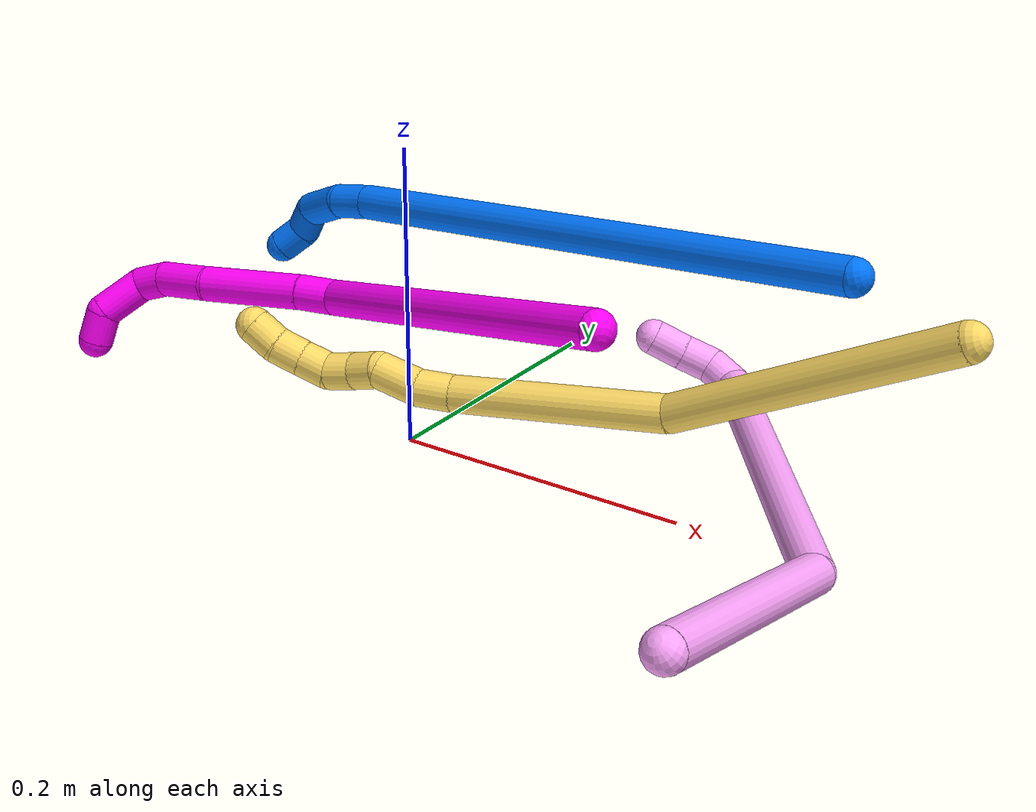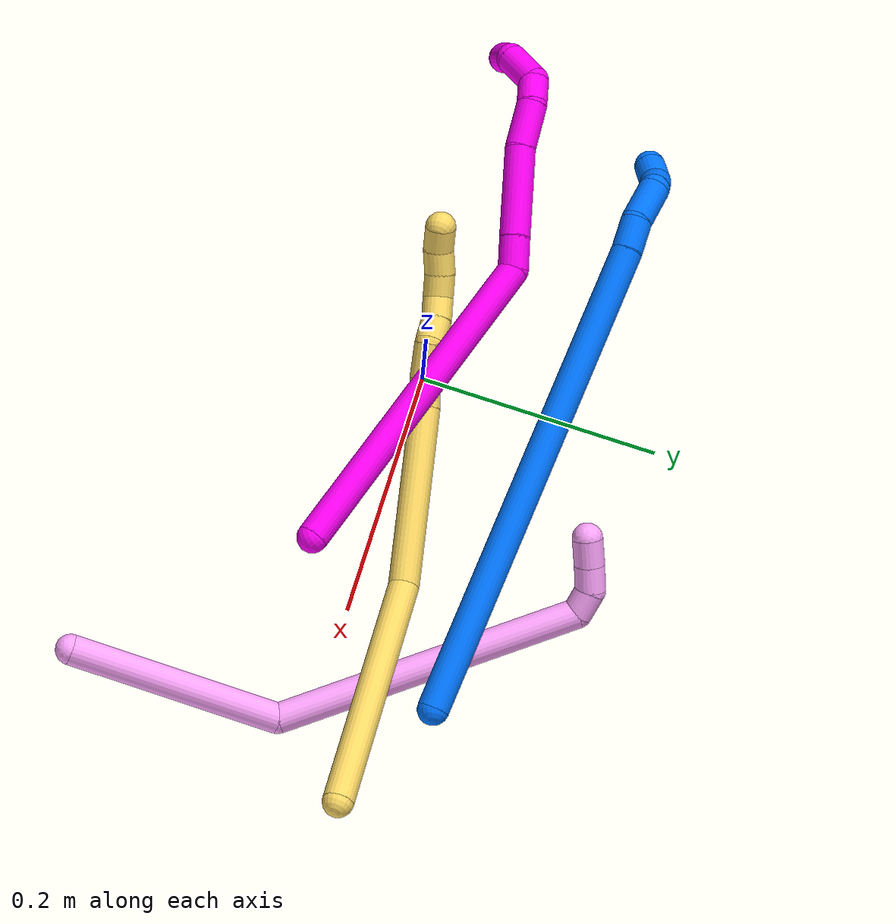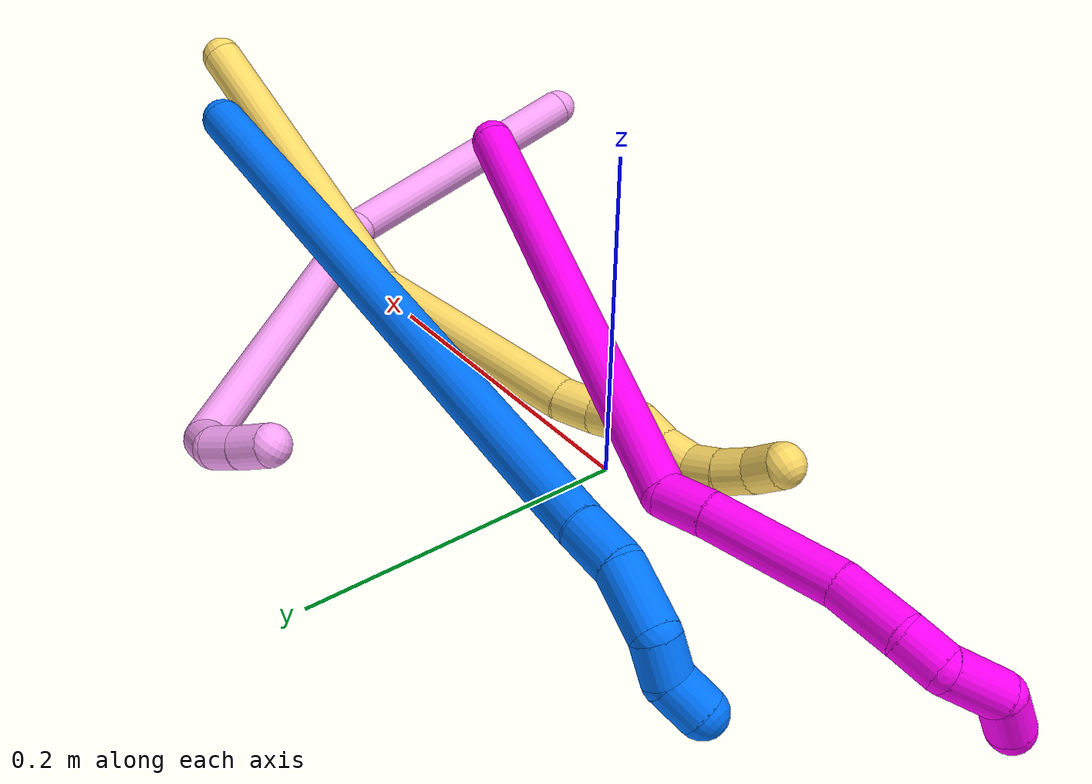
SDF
<sdf version="1.7">
 <world name="default">
  <model name="4">
   <static>0</static>
   <link name="4">
    <collision name="collision-cylinder-e_1_1_4">
     <pose>0.019542 0.049704 -0.070477 -2.52735 0.222836 -0.678271</pose>
     <geometry><cylinder><radius>0.0125</radius><length>0.176854</length></cylinder></geometry>
     <surface>
      <friction><ode><mu>1.16</mu><mu2>1.16</mu2><slip1>0</slip1><slip2>0</slip2></ode></friction>
      <contact><ode><kp>1e+06</kp><kd>1</kd><max_vel>0</max_vel><min_depth>0.001</min_depth></ode></contact>
     </surface>
    </collision>
    <visual name="visual-cylinder-e_1_1_4">
     <pose>0.019542 0.049704 -0.070477 -2.52735 0.222836 -0.678271</pose>
     <geometry><cylinder><radius>0.0125</radius><length>0.176854</length></cylinder></geometry>
     <material><ambient>1 0.65098 0.996078 1</ambient></material>
    </visual>
    <collision name="collision-cylinder-e_2_4_5">
     <pose>0.006421 0.210357 -0.195956 -2.03103 -0.257892 0.412079</pose>
     <geometry><cylinder><radius>0.0125</radius><length>0.25614</length></cylinder></geometry>
     <surface>
      <friction><ode><mu>1.16</mu><mu2>1.16</mu2><slip1>0</slip1><slip2>0</slip2></ode></friction>
      <contact><ode><kp>1e+06</kp><kd>1</kd><max_vel>0</max_vel><min_depth>0.001</min_depth></ode></contact>
     </surface>
    </collision>
    <visual name="visual-cylinder-e_2_4_5">
     <pose>0.006421 0.210357 -0.195956 -2.03103 -0.257892 0.412079</pose>
     <geometry><cylinder><radius>0.0125</radius><length>0.25614</length></cylinder></geometry>
     <material><ambient>1 0.65098 0.996078 1</ambient></material>
    </visual>
    <collision name="collision-cylinder-e_3_5_6">
     <pose>-0.032412 0.330119 -0.247975 -1.24436 -0.585551 0.425833</pose>
     <geometry><cylinder><radius>0.0125</radius><length>0.022326</length></cylinder></geometry>
     <surface>
      <friction><ode><mu>1.16</mu><mu2>1.16</mu2><slip1>0</slip1><slip2>0</slip2></ode></friction>
      <contact><ode><kp>1e+06</kp><kd>1</kd><max_vel>0</max_vel><min_depth>0.001</min_depth></ode></contact>
     </surface>
    </collision>
    <visual name="visual-cylinder-e_3_5_6">
     <pose>-0.032412 0.330119 -0.247975 -1.24436 -0.585551 0.425833</pose>
     <geometry><cylinder><radius>0.0125</radius><length>0.022326</length></cylinder></geometry>
     <material><ambient>1 0.65098 0.996078 1</ambient></material>
    </visual>
    <collision name="collision-cylinder-e_4_6_7">
     <pose>-0.046098 0.343169 -0.238368 -0.569169 -0.762792 0.233556</pose>
     <geometry><cylinder><radius>0.0125</radius><length>0.021756</length></cylinder></geometry>
     <surface>
      <friction><ode><mu>1.16</mu><mu2>1.16</mu2><slip1>0</slip1><slip2>0</slip2></ode></friction>
      <contact><ode><kp>1e+06</kp><kd>1</kd><max_vel>0</max_vel><min_depth>0.001</min_depth></ode></contact>
     </surface>
    </collision>
    <visual name="visual-cylinder-e_4_6_7">
     <pose>-0.046098 0.343169 -0.238368 -0.569169 -0.762792 0.233556</pose>
     <geometry><cylinder><radius>0.0125</radius><length>0.021756</length></cylinder></geometry>
     <material><ambient>1 0.65098 0.996078 1</ambient></material>
    </visual>
    <collision name="collision-cylinder-e_5_7_2">
     <pose>-0.061085 0.351782 -0.224233 -0.527489 -0.709997 0.199541</pose>
     <geometry><cylinder><radius>0.0125</radius><length>0.022924</length></cylinder></geometry>
     <surface>
      <friction><ode><mu>1.16</mu><mu2>1.16</mu2><slip1>0</slip1><slip2>0</slip2></ode></friction>
      <contact><ode><kp>1e+06</kp><kd>1</kd><max_vel>0</max_vel><min_depth>0.001</min_depth></ode></contact>
     </surface>
    </collision>
    <visual name="visual-cylinder-e_5_7_2">
     <pose>-0.061085 0.351782 -0.224233 -0.527489 -0.709997 0.199541</pose>
     <geometry><cylinder><radius>0.0125</radius><length>0.022924</length></cylinder></geometry>
     <material><ambient>1 0.65098 0.996078 1</ambient></material>
    </visual>
    <collision name="collision-sphere-2">
     <pose>-0.068556 0.356158 -0.216723 0 -0 0</pose>
     <geometry><sphere><radius>0.0125</radius></sphere></geometry>
     <surface>
      <friction><ode><mu>1.16</mu><mu2>1.16</mu2><slip1>0</slip1><slip2>0</slip2></ode></friction>
      <contact><ode><kp>1e+06</kp><kd>1</kd><max_vel>0</max_vel><min_depth>0.001</min_depth></ode></contact>
     </surface>
    </collision>
    <visual name="visual-sphere-2">
     <pose>-0.068556 0.356158 -0.216723 0 -0 0</pose>
     <geometry><sphere><radius>0.0125</radius></sphere></geometry>
     <material><ambient>1 0.65098 0.996078 1</ambient></material>
    </visual>
    <collision name="collision-sphere-7">
     <pose>-0.053614 0.347407 -0.231744 0 -0 0</pose>
     <geometry><sphere><radius>0.0125</radius></sphere></geometry>
     <surface>
      <friction><ode><mu>1.16</mu><mu2>1.16</mu2><slip1>0</slip1><slip2>0</slip2></ode></friction>
      <contact><ode><kp>1e+06</kp><kd>1</kd><max_vel>0</max_vel><min_depth>0.001</min_depth></ode></contact>
     </surface>
    </collision>
    <visual name="visual-sphere-7">
     <pose>-0.053614 0.347407 -0.231744 0 -0 0</pose>
     <geometry><sphere><radius>0.0125</radius></sphere></geometry>
     <material><ambient>1 0.65098 0.996078 1</ambient></material>
    </visual>
    <collision name="collision-sphere-6">
     <pose>-0.038582 0.338931 -0.244992 0 -0 0</pose>
     <geometry><sphere><radius>0.0125</radius></sphere></geometry>
     <surface>
      <friction><ode><mu>1.16</mu><mu2>1.16</mu2><slip1>0</slip1><slip2>0</slip2></ode></friction>
      <contact><ode><kp>1e+06</kp><kd>1</kd><max_vel>0</max_vel><min_depth>0.001</min_depth></ode></contact>
     </surface>
    </collision>
    <visual name="visual-sphere-6">
     <pose>-0.038582 0.338931 -0.244992 0 -0 0</pose>
     <geometry><sphere><radius>0.0125</radius></sphere></geometry>
     <material><ambient>1 0.65098 0.996078 1</ambient></material>
    </visual>
    <collision name="collision-sphere-5">
     <pose>-0.026243 0.321307 -0.250959 0 -0 0</pose>
     <geometry><sphere><radius>0.0125</radius></sphere></geometry>
     <surface>
      <friction><ode><mu>1.16</mu><mu2>1.16</mu2><slip1>0</slip1><slip2>0</slip2></ode></friction>
      <contact><ode><kp>1e+06</kp><kd>1</kd><max_vel>0</max_vel><min_depth>0.001</min_depth></ode></contact>
     </surface>
    </collision>
    <visual name="visual-sphere-5">
     <pose>-0.026243 0.321307 -0.250959 0 -0 0</pose>
     <geometry><sphere><radius>0.0125</radius></sphere></geometry>
     <material><ambient>1 0.65098 0.996078 1</ambient></material>
    </visual>
    <collision name="collision-sphere-1">
     <geometry><sphere><radius>0.0125</radius></sphere></geometry>
     <surface>
      <friction><ode><mu>1.16</mu><mu2>1.16</mu2><slip1>0</slip1><slip2>0</slip2></ode></friction>
      <contact><ode><kp>1e+06</kp><kd>1</kd><max_vel>0</max_vel><min_depth>0.001</min_depth></ode></contact>
     </surface>
    </collision>
    <visual name="visual-sphere-1">
     <geometry><sphere><radius>0.0125</radius></sphere></geometry>
     <material><ambient>1 0.65098 0.996078 1</ambient></material>
    </visual>
    <collision name="collision-sphere-4">
     <pose>0.039084 0.099408 -0.140954 0 -0 0</pose>
     <geometry><sphere><radius>0.0125</radius></sphere></geometry>
     <surface>
      <friction><ode><mu>1.16</mu><mu2>1.16</mu2><slip1>0</slip1><slip2>0</slip2></ode></friction>
      <contact><ode><kp>1e+06</kp><kd>1</kd><max_vel>0</max_vel><min_depth>0.001</min_depth></ode></contact>
     </surface>
    </collision>
    <visual name="visual-sphere-4">
     <pose>0.039084 0.099408 -0.140954 0 -0 0</pose>
     <geometry><sphere><radius>0.0125</radius></sphere></geometry>
     <material><ambient>1 0.65098 0.996078 1</ambient></material>
    </visual>
    <inertial>
     <pose>0.003948 0.171143 -0.157038 0 -0 0</pose>
     <mass>0.5</mass>
     <inertia>
      <ixx>0.001865</ixx>
      <ixy>0</ixy>
      <ixz>0</ixz>
      <iyy>-0.000412</iyy>
      <iyz>0</iyz>
      <izz>-0.001245</izz>
     </inertia>
    </inertial>
   </link>
   <pose>0.300606 -0.197487 0.053197 0.579851 -0.424847 0.366719</pose>
  </model>
  <model name="5">
   <static>0</static>
   <link name="5">
    <collision name="collision-cylinder-e_1_1_4">
     <pose>0.001102 -0.007092 -0.099608 3.07051 0.011036 0.307957</pose>
     <geometry><cylinder><radius>0.0125</radius><length>0.199732</length></cylinder></geometry>
     <surface>
      <friction><ode><mu>1.16</mu><mu2>1.16</mu2><slip1>0</slip1><slip2>0</slip2></ode></friction>
      <contact><ode><kp>1e+06</kp><kd>1</kd><max_vel>0</max_vel><min_depth>0.001</min_depth></ode></contact>
     </surface>
    </collision>
    <visual name="visual-cylinder-e_1_1_4">
     <pose>0.001102 -0.007092 -0.099608 3.07051 0.011036 0.307957</pose>
     <geometry><cylinder><radius>0.0125</radius><length>0.199732</length></cylinder></geometry>
     <material><ambient>1 0.858824 0.4 1</ambient></material>
    </visual>
    <collision name="collision-cylinder-e_2_4_5">
     <pose>-0.024085 -0.029339 -0.265756 2.91765 -0.3677 -2.05386</pose>
     <geometry><cylinder><radius>0.0125</radius><length>0.146266</length></cylinder></geometry>
     <surface>
      <friction><ode><mu>1.16</mu><mu2>1.16</mu2><slip1>0</slip1><slip2>0</slip2></ode></friction>
      <contact><ode><kp>1e+06</kp><kd>1</kd><max_vel>0</max_vel><min_depth>0.001</min_depth></ode></contact>
     </surface>
    </collision>
    <visual name="visual-cylinder-e_2_4_5">
     <pose>-0.024085 -0.029339 -0.265756 2.91765 -0.3677 -2.05386</pose>
     <geometry><cylinder><radius>0.0125</radius><length>0.146266</length></cylinder></geometry>
     <material><ambient>1 0.858824 0.4 1</ambient></material>
    </visual>
    <collision name="collision-cylinder-e_3_5_6">
     <pose>-0.05609 -0.048145 -0.342288 2.79136 -0.493126 -1.91615</pose>
     <geometry><cylinder><radius>0.0125</radius><length>0.024151</length></cylinder></geometry>
     <surface>
      <friction><ode><mu>1.16</mu><mu2>1.16</mu2><slip1>0</slip1><slip2>0</slip2></ode></friction>
      <contact><ode><kp>1e+06</kp><kd>1</kd><max_vel>0</max_vel><min_depth>0.001</min_depth></ode></contact>
     </surface>
    </collision>
    <visual name="visual-cylinder-e_3_5_6">
     <pose>-0.05609 -0.048145 -0.342288 2.79136 -0.493126 -1.91615</pose>
     <geometry><cylinder><radius>0.0125</radius><length>0.024151</length></cylinder></geometry>
     <material><ambient>1 0.858824 0.4 1</ambient></material>
    </visual>
    <collision name="collision-cylinder-e_4_6_7">
     <pose>-0.071442 -0.053974 -0.363337 2.94699 -0.707341 -2.62466</pose>
     <geometry><cylinder><radius>0.0125</radius><length>0.029656</length></cylinder></geometry>
     <surface>
      <friction><ode><mu>1.16</mu><mu2>1.16</mu2><slip1>0</slip1><slip2>0</slip2></ode></friction>
      <contact><ode><kp>1e+06</kp><kd>1</kd><max_vel>0</max_vel><min_depth>0.001</min_depth></ode></contact>
     </surface>
    </collision>
    <visual name="visual-cylinder-e_4_6_7">
     <pose>-0.071442 -0.053974 -0.363337 2.94699 -0.707341 -2.62466</pose>
     <geometry><cylinder><radius>0.0125</radius><length>0.029656</length></cylinder></geometry>
     <material><ambient>1 0.858824 0.4 1</ambient></material>
    </visual>
    <collision name="collision-cylinder-e_5_7_8">
     <pose>-0.082843 -0.056871 -0.384265 3.06903 -0.176549 -2.36323</pose>
     <geometry><cylinder><radius>0.0125</radius><length>0.020105</length></cylinder></geometry>
     <surface>
      <friction><ode><mu>1.16</mu><mu2>1.16</mu2><slip1>0</slip1><slip2>0</slip2></ode></friction>
      <contact><ode><kp>1e+06</kp><kd>1</kd><max_vel>0</max_vel><min_depth>0.001</min_depth></ode></contact>
     </surface>
    </collision>
    <visual name="visual-cylinder-e_5_7_8">
     <pose>-0.082843 -0.056871 -0.384265 3.06903 -0.176549 -2.36323</pose>
     <geometry><cylinder><radius>0.0125</radius><length>0.020105</length></cylinder></geometry>
     <material><ambient>1 0.858824 0.4 1</ambient></material>
    </visual>
    <collision name="collision-cylinder-e_6_8_9">
     <pose>-0.087548 -0.060151 -0.40337 2.8709 -0.297561 -1.66656</pose>
     <geometry><cylinder><radius>0.0125</radius><length>0.020048</length></cylinder></geometry>
     <surface>
      <friction><ode><mu>1.16</mu><mu2>1.16</mu2><slip1>0</slip1><slip2>0</slip2></ode></friction>
      <contact><ode><kp>1e+06</kp><kd>1</kd><max_vel>0</max_vel><min_depth>0.001</min_depth></ode></contact>
     </surface>
    </collision>
    <visual name="visual-cylinder-e_6_8_9">
     <pose>-0.087548 -0.060151 -0.40337 2.8709 -0.297561 -1.66656</pose>
     <geometry><cylinder><radius>0.0125</radius><length>0.020048</length></cylinder></geometry>
     <material><ambient>1 0.858824 0.4 1</ambient></material>
    </visual>
    <collision name="collision-cylinder-e_7_9_10">
     <pose>-0.097451 -0.06471 -0.419499 2.85975 -0.77029 -2.46836</pose>
     <geometry><cylinder><radius>0.0125</radius><length>0.020003</length></cylinder></geometry>
     <surface>
      <friction><ode><mu>1.16</mu><mu2>1.16</mu2><slip1>0</slip1><slip2>0</slip2></ode></friction>
      <contact><ode><kp>1e+06</kp><kd>1</kd><max_vel>0</max_vel><min_depth>0.001</min_depth></ode></contact>
     </surface>
    </collision>
    <visual name="visual-cylinder-e_7_9_10">
     <pose>-0.097451 -0.06471 -0.419499 2.85975 -0.77029 -2.46836</pose>
     <geometry><cylinder><radius>0.0125</radius><length>0.020003</length></cylinder></geometry>
     <material><ambient>1 0.858824 0.4 1</ambient></material>
    </visual>
    <collision name="collision-cylinder-e_8_10_11">
     <pose>-0.11209 -0.069797 -0.432041 2.64081 -0.872849 -2.13845</pose>
     <geometry><cylinder><radius>0.0125</radius><length>0.020033</length></cylinder></geometry>
     <surface>
      <friction><ode><mu>1.16</mu><mu2>1.16</mu2><slip1>0</slip1><slip2>0</slip2></ode></friction>
      <contact><ode><kp>1e+06</kp><kd>1</kd><max_vel>0</max_vel><min_depth>0.001</min_depth></ode></contact>
     </surface>
    </collision>
    <visual name="visual-cylinder-e_8_10_11">
     <pose>-0.11209 -0.069797 -0.432041 2.64081 -0.872849 -2.13845</pose>
     <geometry><cylinder><radius>0.0125</radius><length>0.020033</length></cylinder></geometry>
     <material><ambient>1 0.858824 0.4 1</ambient></material>
    </visual>
    <collision name="collision-cylinder-e_9_11_2">
     <pose>-0.128604 -0.074094 -0.44221 2.88075 -1.0838 -2.71254</pose>
     <geometry><cylinder><radius>0.0125</radius><length>0.020006</length></cylinder></geometry>
     <surface>
      <friction><ode><mu>1.16</mu><mu2>1.16</mu2><slip1>0</slip1><slip2>0</slip2></ode></friction>
      <contact><ode><kp>1e+06</kp><kd>1</kd><max_vel>0</max_vel><min_depth>0.001</min_depth></ode></contact>
     </surface>
    </collision>
    <visual name="visual-cylinder-e_9_11_2">
     <pose>-0.128604 -0.074094 -0.44221 2.88075 -1.0838 -2.71254</pose>
     <geometry><cylinder><radius>0.0125</radius><length>0.020006</length></cylinder></geometry>
     <material><ambient>1 0.858824 0.4 1</ambient></material>
    </visual>
    <collision name="collision-sphere-2">
     <pose>-0.137444 -0.075302 -0.446733 0 -0 0</pose>
     <geometry><sphere><radius>0.0125</radius></sphere></geometry>
     <surface>
      <friction><ode><mu>1.16</mu><mu2>1.16</mu2><slip1>0</slip1><slip2>0</slip2></ode></friction>
      <contact><ode><kp>1e+06</kp><kd>1</kd><max_vel>0</max_vel><min_depth>0.001</min_depth></ode></contact>
     </surface>
    </collision>
    <visual name="visual-sphere-2">
     <pose>-0.137444 -0.075302 -0.446733 0 -0 0</pose>
     <geometry><sphere><radius>0.0125</radius></sphere></geometry>
     <material><ambient>1 0.858824 0.4 1</ambient></material>
    </visual>
    <collision name="collision-sphere-11">
     <pose>-0.119764 -0.072887 -0.437687 0 -0 0</pose>
     <geometry><sphere><radius>0.0125</radius></sphere></geometry>
     <surface>
      <friction><ode><mu>1.16</mu><mu2>1.16</mu2><slip1>0</slip1><slip2>0</slip2></ode></friction>
      <contact><ode><kp>1e+06</kp><kd>1</kd><max_vel>0</max_vel><min_depth>0.001</min_depth></ode></contact>
     </surface>
    </collision>
    <visual name="visual-sphere-11">
     <pose>-0.119764 -0.072887 -0.437687 0 -0 0</pose>
     <geometry><sphere><radius>0.0125</radius></sphere></geometry>
     <material><ambient>1 0.858824 0.4 1</ambient></material>
    </visual>
    <collision name="collision-sphere-10">
     <pose>-0.104415 -0.066706 -0.426394 0 -0 0</pose>
     <geometry><sphere><radius>0.0125</radius></sphere></geometry>
     <surface>
      <friction><ode><mu>1.16</mu><mu2>1.16</mu2><slip1>0</slip1><slip2>0</slip2></ode></friction>
      <contact><ode><kp>1e+06</kp><kd>1</kd><max_vel>0</max_vel><min_depth>0.001</min_depth></ode></contact>
     </surface>
    </collision>
    <visual name="visual-sphere-10">
     <pose>-0.104415 -0.066706 -0.426394 0 -0 0</pose>
     <geometry><sphere><radius>0.0125</radius></sphere></geometry>
     <material><ambient>1 0.858824 0.4 1</ambient></material>
    </visual>
    <collision name="collision-sphere-9">
     <pose>-0.090487 -0.062713 -0.412605 0 -0 0</pose>
     <geometry><sphere><radius>0.0125</radius></sphere></geometry>
     <surface>
      <friction><ode><mu>1.16</mu><mu2>1.16</mu2><slip1>0</slip1><slip2>0</slip2></ode></friction>
      <contact><ode><kp>1e+06</kp><kd>1</kd><max_vel>0</max_vel><min_depth>0.001</min_depth></ode></contact>
     </surface>
    </collision>
    <visual name="visual-sphere-9">
     <pose>-0.090487 -0.062713 -0.412605 0 -0 0</pose>
     <geometry><sphere><radius>0.0125</radius></sphere></geometry>
     <material><ambient>1 0.858824 0.4 1</ambient></material>
    </visual>
    <collision name="collision-sphere-4">
     <pose>0.002204 -0.014184 -0.199216 0 -0 0</pose>
     <geometry><sphere><radius>0.0125</radius></sphere></geometry>
     <surface>
      <friction><ode><mu>1.16</mu><mu2>1.16</mu2><slip1>0</slip1><slip2>0</slip2></ode></friction>
      <contact><ode><kp>1e+06</kp><kd>1</kd><max_vel>0</max_vel><min_depth>0.001</min_depth></ode></contact>
     </surface>
    </collision>
    <visual name="visual-sphere-4">
     <pose>0.002204 -0.014184 -0.199216 0 -0 0</pose>
     <geometry><sphere><radius>0.0125</radius></sphere></geometry>
     <material><ambient>1 0.858824 0.4 1</ambient></material>
    </visual>
    <collision name="collision-sphere-1">
     <geometry><sphere><radius>0.0125</radius></sphere></geometry>
     <surface>
      <friction><ode><mu>1.16</mu><mu2>1.16</mu2><slip1>0</slip1><slip2>0</slip2></ode></friction>
      <contact><ode><kp>1e+06</kp><kd>1</kd><max_vel>0</max_vel><min_depth>0.001</min_depth></ode></contact>
     </surface>
    </collision>
    <visual name="visual-sphere-1">
     <geometry><sphere><radius>0.0125</radius></sphere></geometry>
     <material><ambient>1 0.858824 0.4 1</ambient></material>
    </visual>
    <collision name="collision-sphere-8">
     <pose>-0.084609 -0.057588 -0.394135 0 -0 0</pose>
     <geometry><sphere><radius>0.0125</radius></sphere></geometry>
     <surface>
      <friction><ode><mu>1.16</mu><mu2>1.16</mu2><slip1>0</slip1><slip2>0</slip2></ode></friction>
      <contact><ode><kp>1e+06</kp><kd>1</kd><max_vel>0</max_vel><min_depth>0.001</min_depth></ode></contact>
     </surface>
    </collision>
    <visual name="visual-sphere-8">
     <pose>-0.084609 -0.057588 -0.394135 0 -0 0</pose>
     <geometry><sphere><radius>0.0125</radius></sphere></geometry>
     <material><ambient>1 0.858824 0.4 1</ambient></material>
    </visual>
    <collision name="collision-sphere-5">
     <pose>-0.050374 -0.044495 -0.332297 0 -0 0</pose>
     <geometry><sphere><radius>0.0125</radius></sphere></geometry>
     <surface>
      <friction><ode><mu>1.16</mu><mu2>1.16</mu2><slip1>0</slip1><slip2>0</slip2></ode></friction>
      <contact><ode><kp>1e+06</kp><kd>1</kd><max_vel>0</max_vel><min_depth>0.001</min_depth></ode></contact>
     </surface>
    </collision>
    <visual name="visual-sphere-5">
     <pose>-0.050374 -0.044495 -0.332297 0 -0 0</pose>
     <geometry><sphere><radius>0.0125</radius></sphere></geometry>
     <material><ambient>1 0.858824 0.4 1</ambient></material>
    </visual>
    <collision name="collision-sphere-6">
     <pose>-0.061807 -0.051794 -0.352279 0 -0 0</pose>
     <geometry><sphere><radius>0.0125</radius></sphere></geometry>
     <surface>
      <friction><ode><mu>1.16</mu><mu2>1.16</mu2><slip1>0</slip1><slip2>0</slip2></ode></friction>
      <contact><ode><kp>1e+06</kp><kd>1</kd><max_vel>0</max_vel><min_depth>0.001</min_depth></ode></contact>
     </surface>
    </collision>
    <visual name="visual-sphere-6">
     <pose>-0.061807 -0.051794 -0.352279 0 -0 0</pose>
     <geometry><sphere><radius>0.0125</radius></sphere></geometry>
     <material><ambient>1 0.858824 0.4 1</ambient></material>
    </visual>
    <collision name="collision-sphere-7">
     <pose>-0.081078 -0.056153 -0.374395 0 -0 0</pose>
     <geometry><sphere><radius>0.0125</radius></sphere></geometry>
     <surface>
      <friction><ode><mu>1.16</mu><mu2>1.16</mu2><slip1>0</slip1><slip2>0</slip2></ode></friction>
      <contact><ode><kp>1e+06</kp><kd>1</kd><max_vel>0</max_vel><min_depth>0.001</min_depth></ode></contact>
     </surface>
    </collision>
    <visual name="visual-sphere-7">
     <pose>-0.081078 -0.056153 -0.374395 0 -0 0</pose>
     <geometry><sphere><radius>0.0125</radius></sphere></geometry>
     <material><ambient>1 0.858824 0.4 1</ambient></material>
    </visual>
    <inertial>
     <pose>-0.033929 -0.029991 -0.239026 0 -0 0</pose>
     <mass>0.5</mass>
     <inertia>
      <ixx>0.000484</ixx>
      <ixy>0</ixy>
      <ixz>0</ixz>
      <iyy>-0.000519</iyy>
      <iyz>0</iyz>
      <izz>0.000166</izz>
     </inertia>
    </inertial>
   </link>
   <pose>0.349631 0.043245 0.139076 0.21181 1.11565 0.182955</pose>
  </model>
  <model name="10">
   <static>0</static>
   <link name="10">
    <collision name="collision-cylinder-e_1_1_4">
     <pose>-0.101646 0.028951 0.092093 -0.304585 -0.811177 0.131618</pose>
     <geometry><cylinder><radius>0.0125</radius><length>0.280366</length></cylinder></geometry>
     <surface>
      <friction><ode><mu>1.16</mu><mu2>1.16</mu2><slip1>0</slip1><slip2>0</slip2></ode></friction>
      <contact><ode><kp>1e+06</kp><kd>1</kd><max_vel>0</max_vel><min_depth>0.001</min_depth></ode></contact>
     </surface>
    </collision>
    <visual name="visual-cylinder-e_1_1_4">
     <pose>-0.101646 0.028951 0.092093 -0.304585 -0.811177 0.131618</pose>
     <geometry><cylinder><radius>0.0125</radius><length>0.280366</length></cylinder></geometry>
     <material><ambient>1 0 0.964706 1</ambient></material>
    </visual>
    <collision name="collision-cylinder-e_2_4_5">
     <pose>-0.214425 0.053029 0.190221 0.679259 -0.962249 -0.364795</pose>
     <geometry><cylinder><radius>0.0125</radius><length>0.027137</length></cylinder></geometry>
     <surface>
      <friction><ode><mu>1.16</mu><mu2>1.16</mu2><slip1>0</slip1><slip2>0</slip2></ode></friction>
      <contact><ode><kp>1e+06</kp><kd>1</kd><max_vel>0</max_vel><min_depth>0.001</min_depth></ode></contact>
     </surface>
    </collision>
    <visual name="visual-cylinder-e_2_4_5">
     <pose>-0.214425 0.053029 0.190221 0.679259 -0.962249 -0.364795</pose>
     <geometry><cylinder><radius>0.0125</radius><length>0.027137</length></cylinder></geometry>
     <material><ambient>1 0 0.964706 1</ambient></material>
    </visual>
    <collision name="collision-cylinder-e_3_5_6">
     <pose>-0.25729 0.037081 0.211978 0.613682 -1.02595 -0.353222</pose>
     <geometry><cylinder><radius>0.0125</radius><length>0.07421</length></cylinder></geometry>
     <surface>
      <friction><ode><mu>1.16</mu><mu2>1.16</mu2><slip1>0</slip1><slip2>0</slip2></ode></friction>
      <contact><ode><kp>1e+06</kp><kd>1</kd><max_vel>0</max_vel><min_depth>0.001</min_depth></ode></contact>
     </surface>
    </collision>
    <visual name="visual-cylinder-e_3_5_6">
     <pose>-0.25729 0.037081 0.211978 0.613682 -1.02595 -0.353222</pose>
     <geometry><cylinder><radius>0.0125</radius><length>0.07421</length></cylinder></geometry>
     <material><ambient>1 0 0.964706 1</ambient></material>
    </visual>
    <collision name="collision-cylinder-e_4_6_7">
     <pose>-0.305298 0.023349 0.238089 0.250401 -0.988184 -0.135382</pose>
     <geometry><cylinder><radius>0.0125</radius><length>0.038981</length></cylinder></geometry>
     <surface>
      <friction><ode><mu>1.16</mu><mu2>1.16</mu2><slip1>0</slip1><slip2>0</slip2></ode></friction>
      <contact><ode><kp>1e+06</kp><kd>1</kd><max_vel>0</max_vel><min_depth>0.001</min_depth></ode></contact>
     </surface>
    </collision>
    <visual name="visual-cylinder-e_4_6_7">
     <pose>-0.305298 0.023349 0.238089 0.250401 -0.988184 -0.135382</pose>
     <geometry><cylinder><radius>0.0125</radius><length>0.038981</length></cylinder></geometry>
     <material><ambient>1 0 0.964706 1</ambient></material>
    </visual>
    <collision name="collision-cylinder-e_5_7_8">
     <pose>-0.332303 0.019801 0.25177 0.264223 -1.26317 -0.193814</pose>
     <geometry><cylinder><radius>0.0125</radius><length>0.022517</length></cylinder></geometry>
     <surface>
      <friction><ode><mu>1.16</mu><mu2>1.16</mu2><slip1>0</slip1><slip2>0</slip2></ode></friction>
      <contact><ode><kp>1e+06</kp><kd>1</kd><max_vel>0</max_vel><min_depth>0.001</min_depth></ode></contact>
     </surface>
    </collision>
    <visual name="visual-cylinder-e_5_7_8">
     <pose>-0.332303 0.019801 0.25177 0.264223 -1.26317 -0.193814</pose>
     <geometry><cylinder><radius>0.0125</radius><length>0.022517</length></cylinder></geometry>
     <material><ambient>1 0 0.964706 1</ambient></material>
    </visual>
    <collision name="collision-cylinder-e_6_8_9">
     <pose>-0.358396 0.015544 0.248731 2.65266 -1.13416 -2.39493</pose>
     <geometry><cylinder><radius>0.0125</radius><length>0.033907</length></cylinder></geometry>
     <surface>
      <friction><ode><mu>1.16</mu><mu2>1.16</mu2><slip1>0</slip1><slip2>0</slip2></ode></friction>
      <contact><ode><kp>1e+06</kp><kd>1</kd><max_vel>0</max_vel><min_depth>0.001</min_depth></ode></contact>
     </surface>
    </collision>
    <visual name="visual-cylinder-e_6_8_9">
     <pose>-0.358396 0.015544 0.248731 2.65266 -1.13416 -2.39493</pose>
     <geometry><cylinder><radius>0.0125</radius><length>0.033907</length></cylinder></geometry>
     <material><ambient>1 0 0.964706 1</ambient></material>
    </visual>
    <collision name="collision-cylinder-e_7_9_2">
     <pose>-0.382288 0.017198 0.236663 -2.42272 -0.841267 1.74427</pose>
     <geometry><cylinder><radius>0.0125</radius><length>0.022882</length></cylinder></geometry>
     <surface>
      <friction><ode><mu>1.16</mu><mu2>1.16</mu2><slip1>0</slip1><slip2>0</slip2></ode></friction>
      <contact><ode><kp>1e+06</kp><kd>1</kd><max_vel>0</max_vel><min_depth>0.001</min_depth></ode></contact>
     </surface>
    </collision>
    <visual name="visual-cylinder-e_7_9_2">
     <pose>-0.382288 0.017198 0.236663 -2.42272 -0.841267 1.74427</pose>
     <geometry><cylinder><radius>0.0125</radius><length>0.022882</length></cylinder></geometry>
     <material><ambient>1 0 0.964706 1</ambient></material>
    </visual>
    <collision name="collision-sphere-2">
     <pose>-0.390817 0.02222 0.230924 0 -0 0</pose>
     <geometry><sphere><radius>0.0125</radius></sphere></geometry>
     <surface>
      <friction><ode><mu>1.16</mu><mu2>1.16</mu2><slip1>0</slip1><slip2>0</slip2></ode></friction>
      <contact><ode><kp>1e+06</kp><kd>1</kd><max_vel>0</max_vel><min_depth>0.001</min_depth></ode></contact>
     </surface>
    </collision>
    <visual name="visual-sphere-2">
     <pose>-0.390817 0.02222 0.230924 0 -0 0</pose>
     <geometry><sphere><radius>0.0125</radius></sphere></geometry>
     <material><ambient>1 0 0.964706 1</ambient></material>
    </visual>
    <collision name="collision-sphere-9">
     <pose>-0.373759 0.012176 0.242401 0 -0 0</pose>
     <geometry><sphere><radius>0.0125</radius></sphere></geometry>
     <surface>
      <friction><ode><mu>1.16</mu><mu2>1.16</mu2><slip1>0</slip1><slip2>0</slip2></ode></friction>
      <contact><ode><kp>1e+06</kp><kd>1</kd><max_vel>0</max_vel><min_depth>0.001</min_depth></ode></contact>
     </surface>
    </collision>
    <visual name="visual-sphere-9">
     <pose>-0.373759 0.012176 0.242401 0 -0 0</pose>
     <geometry><sphere><radius>0.0125</radius></sphere></geometry>
     <material><ambient>1 0 0.964706 1</ambient></material>
    </visual>
    <collision name="collision-sphere-4">
     <pose>-0.203293 0.057902 0.184186 0 -0 0</pose>
     <geometry><sphere><radius>0.0125</radius></sphere></geometry>
     <surface>
      <friction><ode><mu>1.16</mu><mu2>1.16</mu2><slip1>0</slip1><slip2>0</slip2></ode></friction>
      <contact><ode><kp>1e+06</kp><kd>1</kd><max_vel>0</max_vel><min_depth>0.001</min_depth></ode></contact>
     </surface>
    </collision>
    <visual name="visual-sphere-4">
     <pose>-0.203293 0.057902 0.184186 0 -0 0</pose>
     <geometry><sphere><radius>0.0125</radius></sphere></geometry>
     <material><ambient>1 0 0.964706 1</ambient></material>
    </visual>
    <collision name="collision-sphere-1">
     <geometry><sphere><radius>0.0125</radius></sphere></geometry>
     <surface>
      <friction><ode><mu>1.16</mu><mu2>1.16</mu2><slip1>0</slip1><slip2>0</slip2></ode></friction>
      <contact><ode><kp>1e+06</kp><kd>1</kd><max_vel>0</max_vel><min_depth>0.001</min_depth></ode></contact>
     </surface>
    </collision>
    <visual name="visual-sphere-1">
     <geometry><sphere><radius>0.0125</radius></sphere></geometry>
     <material><ambient>1 0 0.964706 1</ambient></material>
    </visual>
    <collision name="collision-sphere-8">
     <pose>-0.343033 0.018911 0.25506 0 -0 0</pose>
     <geometry><sphere><radius>0.0125</radius></sphere></geometry>
     <surface>
      <friction><ode><mu>1.16</mu><mu2>1.16</mu2><slip1>0</slip1><slip2>0</slip2></ode></friction>
      <contact><ode><kp>1e+06</kp><kd>1</kd><max_vel>0</max_vel><min_depth>0.001</min_depth></ode></contact>
     </surface>
    </collision>
    <visual name="visual-sphere-8">
     <pose>-0.343033 0.018911 0.25506 0 -0 0</pose>
     <geometry><sphere><radius>0.0125</radius></sphere></geometry>
     <material><ambient>1 0 0.964706 1</ambient></material>
    </visual>
    <collision name="collision-sphere-5">
     <pose>-0.225558 0.048156 0.196256 0 -0 0</pose>
     <geometry><sphere><radius>0.0125</radius></sphere></geometry>
     <surface>
      <friction><ode><mu>1.16</mu><mu2>1.16</mu2><slip1>0</slip1><slip2>0</slip2></ode></friction>
      <contact><ode><kp>1e+06</kp><kd>1</kd><max_vel>0</max_vel><min_depth>0.001</min_depth></ode></contact>
     </surface>
    </collision>
    <visual name="visual-sphere-5">
     <pose>-0.225558 0.048156 0.196256 0 -0 0</pose>
     <geometry><sphere><radius>0.0125</radius></sphere></geometry>
     <material><ambient>1 0 0.964706 1</ambient></material>
    </visual>
    <collision name="collision-sphere-6">
     <pose>-0.289023 0.026006 0.2277 0 -0 0</pose>
     <geometry><sphere><radius>0.0125</radius></sphere></geometry>
     <surface>
      <friction><ode><mu>1.16</mu><mu2>1.16</mu2><slip1>0</slip1><slip2>0</slip2></ode></friction>
      <contact><ode><kp>1e+06</kp><kd>1</kd><max_vel>0</max_vel><min_depth>0.001</min_depth></ode></contact>
     </surface>
    </collision>
    <visual name="visual-sphere-6">
     <pose>-0.289023 0.026006 0.2277 0 -0 0</pose>
     <geometry><sphere><radius>0.0125</radius></sphere></geometry>
     <material><ambient>1 0 0.964706 1</ambient></material>
    </visual>
    <collision name="collision-sphere-7">
     <pose>-0.321573 0.020692 0.248479 0 -0 0</pose>
     <geometry><sphere><radius>0.0125</radius></sphere></geometry>
     <surface>
      <friction><ode><mu>1.16</mu><mu2>1.16</mu2><slip1>0</slip1><slip2>0</slip2></ode></friction>
      <contact><ode><kp>1e+06</kp><kd>1</kd><max_vel>0</max_vel><min_depth>0.001</min_depth></ode></contact>
     </surface>
    </collision>
    <visual name="visual-sphere-7">
     <pose>-0.321573 0.020692 0.248479 0 -0 0</pose>
     <geometry><sphere><radius>0.0125</radius></sphere></geometry>
     <material><ambient>1 0 0.964706 1</ambient></material>
    </visual>
    <inertial>
     <pose>-0.187387 0.029169 0.151024 0 -0 0</pose>
     <mass>0.5</mass>
     <inertia>
      <ixx>0.001412</ixx>
      <ixy>0</ixy>
      <ixz>0</ixz>
      <iyy>0.002012</iyy>
      <iyz>0</iyz>
      <izz>0.001036</izz>
     </inertia>
    </inertial>
   </link>
   <pose>0.162901 -0.038489 0.130483 -1.00045 -0.560643 0.442008</pose>
  </model>
  <model name="14">
   <static>0</static>
   <link name="14">
    <collision name="collision-cylinder-e_1_1_4">
     <pose>-0.058735 -0.048036 -0.182551 2.88429 -0.301656 -1.73121</pose>
     <geometry><cylinder><radius>0.0125</radius><length>0.395384</length></cylinder></geometry>
     <surface>
      <friction><ode><mu>1.16</mu><mu2>1.16</mu2><slip1>0</slip1><slip2>0</slip2></ode></friction>
      <contact><ode><kp>1e+06</kp><kd>1</kd><max_vel>0</max_vel><min_depth>0.001</min_depth></ode></contact>
     </surface>
    </collision>
    <visual name="visual-cylinder-e_1_1_4">
     <pose>-0.058735 -0.048036 -0.182551 2.88429 -0.301656 -1.73121</pose>
     <geometry><cylinder><radius>0.0125</radius><length>0.395384</length></cylinder></geometry>
     <material><ambient>0 0.462745 1 1</ambient></material>
    </visual>
    <collision name="collision-cylinder-e_2_4_5">
     <pose>-0.120281 -0.098785 -0.378099 2.93584 -0.208704 -1.58513</pose>
     <geometry><cylinder><radius>0.0125</radius><length>0.027142</length></cylinder></geometry>
     <surface>
      <friction><ode><mu>1.16</mu><mu2>1.16</mu2><slip1>0</slip1><slip2>0</slip2></ode></friction>
      <contact><ode><kp>1e+06</kp><kd>1</kd><max_vel>0</max_vel><min_depth>0.001</min_depth></ode></contact>
     </surface>
    </collision>
    <visual name="visual-cylinder-e_2_4_5">
     <pose>-0.120281 -0.098785 -0.378099 2.93584 -0.208704 -1.58513</pose>
     <geometry><cylinder><radius>0.0125</radius><length>0.027142</length></cylinder></geometry>
     <material><ambient>0 0.462745 1 1</ambient></material>
    </visual>
    <collision name="collision-cylinder-e_3_5_6">
     <pose>-0.12898 -0.100053 -0.407927 -3.05599 -0.335297 2.64587</pose>
     <geometry><cylinder><radius>0.0125</radius><length>0.03578</length></cylinder></geometry>
     <surface>
      <friction><ode><mu>1.16</mu><mu2>1.16</mu2><slip1>0</slip1><slip2>0</slip2></ode></friction>
      <contact><ode><kp>1e+06</kp><kd>1</kd><max_vel>0</max_vel><min_depth>0.001</min_depth></ode></contact>
     </surface>
    </collision>
    <visual name="visual-cylinder-e_3_5_6">
     <pose>-0.12898 -0.100053 -0.407927 -3.05599 -0.335297 2.64587</pose>
     <geometry><cylinder><radius>0.0125</radius><length>0.03578</length></cylinder></geometry>
     <material><ambient>0 0.462745 1 1</ambient></material>
    </visual>
    <collision name="collision-cylinder-e_4_6_7">
     <pose>-0.135211 -0.091817 -0.432668 -2.43208 -0.033082 0.089256</pose>
     <geometry><cylinder><radius>0.0125</radius><length>0.020862</length></cylinder></geometry>
     <surface>
      <friction><ode><mu>1.16</mu><mu2>1.16</mu2><slip1>0</slip1><slip2>0</slip2></ode></friction>
      <contact><ode><kp>1e+06</kp><kd>1</kd><max_vel>0</max_vel><min_depth>0.001</min_depth></ode></contact>
     </surface>
    </collision>
    <visual name="visual-cylinder-e_4_6_7">
     <pose>-0.135211 -0.091817 -0.432668 -2.43208 -0.033082 0.089256</pose>
     <geometry><cylinder><radius>0.0125</radius><length>0.020862</length></cylinder></geometry>
     <material><ambient>0 0.462745 1 1</ambient></material>
    </visual>
    <collision name="collision-cylinder-e_5_7_2">
     <pose>-0.132707 -0.082157 -0.450177 -2.85127 0.277071 -1.52345</pose>
     <geometry><cylinder><radius>0.0125</radius><length>0.020833</length></cylinder></geometry>
     <surface>
      <friction><ode><mu>1.16</mu><mu2>1.16</mu2><slip1>0</slip1><slip2>0</slip2></ode></friction>
      <contact><ode><kp>1e+06</kp><kd>1</kd><max_vel>0</max_vel><min_depth>0.001</min_depth></ode></contact>
     </surface>
    </collision>
    <visual name="visual-cylinder-e_5_7_2">
     <pose>-0.132707 -0.082157 -0.450177 -2.85127 0.277071 -1.52345</pose>
     <geometry><cylinder><radius>0.0125</radius><length>0.020833</length></cylinder></geometry>
     <material><ambient>0 0.462745 1 1</ambient></material>
    </visual>
    <collision name="collision-sphere-2">
     <pose>-0.129858 -0.079289 -0.459777 0 -0 0</pose>
     <geometry><sphere><radius>0.0125</radius></sphere></geometry>
     <surface>
      <friction><ode><mu>1.16</mu><mu2>1.16</mu2><slip1>0</slip1><slip2>0</slip2></ode></friction>
      <contact><ode><kp>1e+06</kp><kd>1</kd><max_vel>0</max_vel><min_depth>0.001</min_depth></ode></contact>
     </surface>
    </collision>
    <visual name="visual-sphere-2">
     <pose>-0.129858 -0.079289 -0.459777 0 -0 0</pose>
     <geometry><sphere><radius>0.0125</radius></sphere></geometry>
     <material><ambient>0 0.462745 1 1</ambient></material>
    </visual>
    <collision name="collision-sphere-7">
     <pose>-0.135556 -0.085025 -0.440577 0 -0 0</pose>
     <geometry><sphere><radius>0.0125</radius></sphere></geometry>
     <surface>
      <friction><ode><mu>1.16</mu><mu2>1.16</mu2><slip1>0</slip1><slip2>0</slip2></ode></friction>
      <contact><ode><kp>1e+06</kp><kd>1</kd><max_vel>0</max_vel><min_depth>0.001</min_depth></ode></contact>
     </surface>
    </collision>
    <visual name="visual-sphere-7">
     <pose>-0.135556 -0.085025 -0.440577 0 -0 0</pose>
     <geometry><sphere><radius>0.0125</radius></sphere></geometry>
     <material><ambient>0 0.462745 1 1</ambient></material>
    </visual>
    <collision name="collision-sphere-6">
     <pose>-0.134866 -0.098609 -0.424758 0 -0 0</pose>
     <geometry><sphere><radius>0.0125</radius></sphere></geometry>
     <surface>
      <friction><ode><mu>1.16</mu><mu2>1.16</mu2><slip1>0</slip1><slip2>0</slip2></ode></friction>
      <contact><ode><kp>1e+06</kp><kd>1</kd><max_vel>0</max_vel><min_depth>0.001</min_depth></ode></contact>
     </surface>
    </collision>
    <visual name="visual-sphere-6">
     <pose>-0.134866 -0.098609 -0.424758 0 -0 0</pose>
     <geometry><sphere><radius>0.0125</radius></sphere></geometry>
     <material><ambient>0 0.462745 1 1</ambient></material>
    </visual>
    <collision name="collision-sphere-5">
     <pose>-0.123093 -0.101497 -0.391095 0 -0 0</pose>
     <geometry><sphere><radius>0.0125</radius></sphere></geometry>
     <surface>
      <friction><ode><mu>1.16</mu><mu2>1.16</mu2><slip1>0</slip1><slip2>0</slip2></ode></friction>
      <contact><ode><kp>1e+06</kp><kd>1</kd><max_vel>0</max_vel><min_depth>0.001</min_depth></ode></contact>
     </surface>
    </collision>
    <visual name="visual-sphere-5">
     <pose>-0.123093 -0.101497 -0.391095 0 -0 0</pose>
     <geometry><sphere><radius>0.0125</radius></sphere></geometry>
     <material><ambient>0 0.462745 1 1</ambient></material>
    </visual>
    <collision name="collision-sphere-1">
     <geometry><sphere><radius>0.0125</radius></sphere></geometry>
     <surface>
      <friction><ode><mu>1.16</mu><mu2>1.16</mu2><slip1>0</slip1><slip2>0</slip2></ode></friction>
      <contact><ode><kp>1e+06</kp><kd>1</kd><max_vel>0</max_vel><min_depth>0.001</min_depth></ode></contact>
     </surface>
    </collision>
    <visual name="visual-sphere-1">
     <geometry><sphere><radius>0.0125</radius></sphere></geometry>
     <material><ambient>0 0.462745 1 1</ambient></material>
    </visual>
    <collision name="collision-sphere-4">
     <pose>-0.117469 -0.096072 -0.365103 0 -0 0</pose>
     <geometry><sphere><radius>0.0125</radius></sphere></geometry>
     <surface>
      <friction><ode><mu>1.16</mu><mu2>1.16</mu2><slip1>0</slip1><slip2>0</slip2></ode></friction>
      <contact><ode><kp>1e+06</kp><kd>1</kd><max_vel>0</max_vel><min_depth>0.001</min_depth></ode></contact>
     </surface>
    </collision>
    <visual name="visual-sphere-4">
     <pose>-0.117469 -0.096072 -0.365103 0 -0 0</pose>
     <geometry><sphere><radius>0.0125</radius></sphere></geometry>
     <material><ambient>0 0.462745 1 1</ambient></material>
    </visual>
    <inertial>
     <pose>-0.073375 -0.057762 -0.23088 0 -0 0</pose>
     <mass>0.5</mass>
     <inertia>
      <ixx>-0.005672</ixx>
      <ixy>0</ixy>
      <ixz>0</ixz>
      <iyy>-0.00369</iyy>
      <iyz>0</iyz>
      <izz>0.002755</izz>
     </inertia>
    </inertial>
   </link>
   <pose>0.261001 0.090672 0.142982 -1.19326 0.073869 -1.35</pose>
  </model>
 </world>
</sdf>
